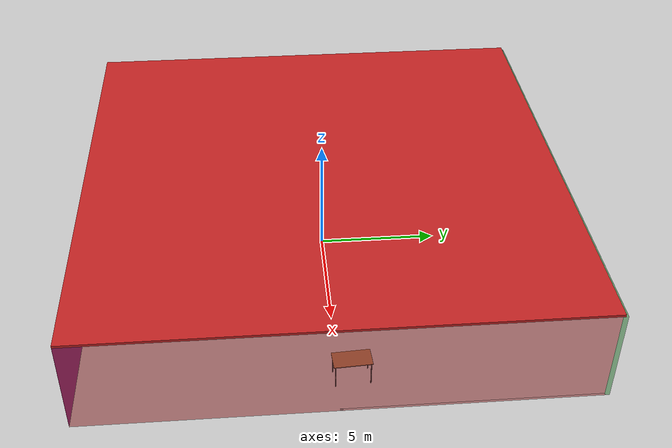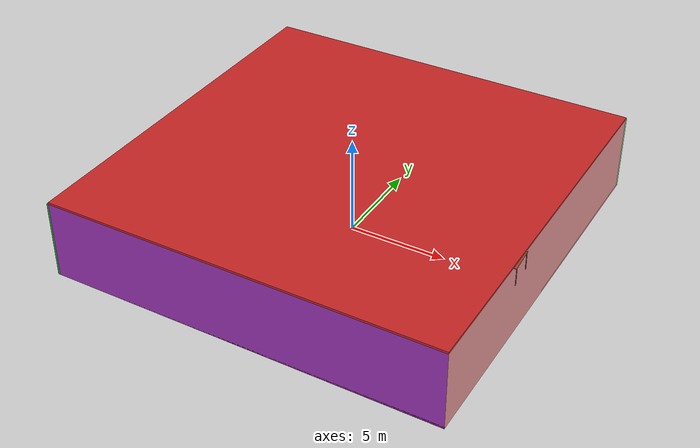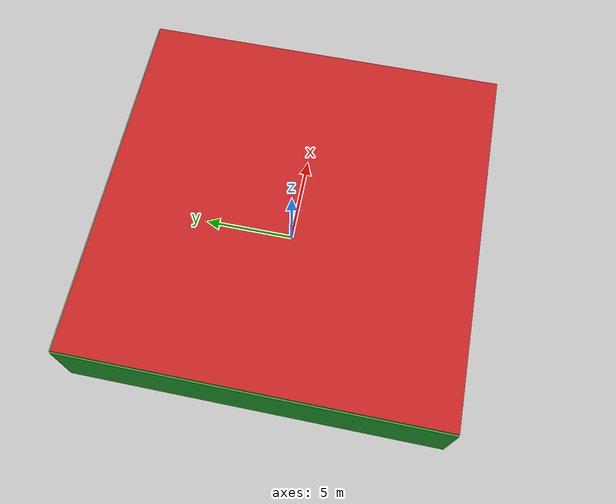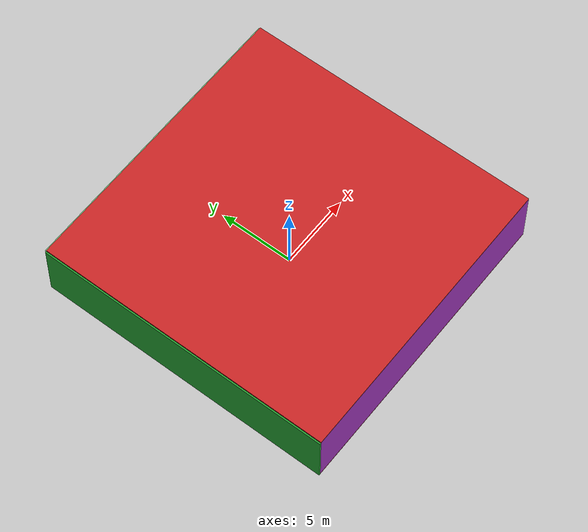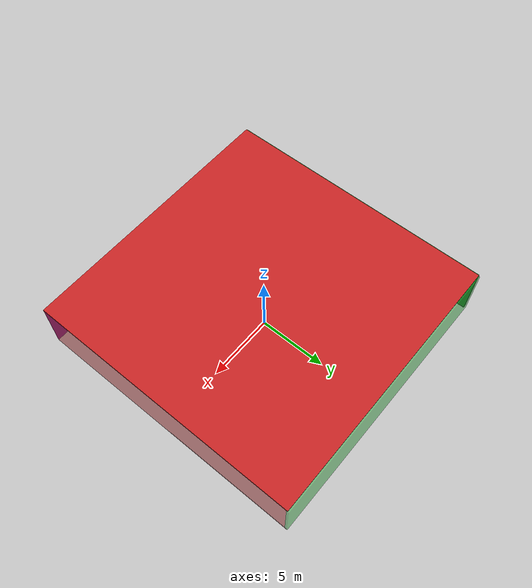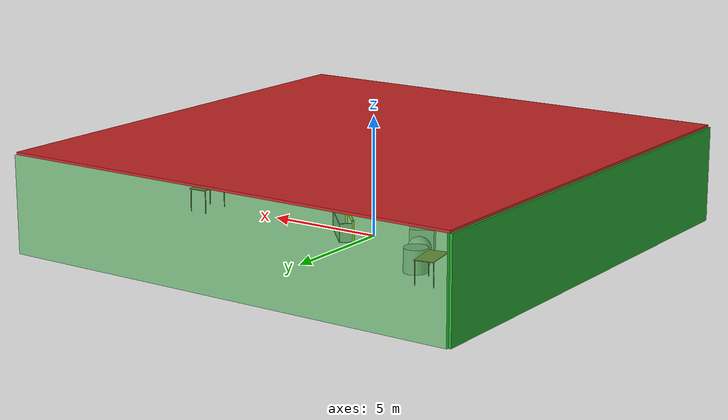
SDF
<sdf version="1.4">
 <world name="default">
  <physics type="ode">
   <max_step_size>0.001</max_step_size>
   <real_time_factor>1</real_time_factor>
   <real_time_update_rate>1000</real_time_update_rate>
   <gravity>0 0 -9.8</gravity>
  </physics>
  <scene><ambient>0.4 0.4 0.4 1</ambient><background>0.7 0.7 0.7 1</background><shadows>1</shadows></scene>
  <model name="Surrounding">
   <static>1</static>
   <link name="Ceiling">
    <collision name="Ceiling_Collision"><geometry><box><size>20 20 0.1</size></box></geometry></collision>
    <visual name="Ceiling_Visual">
     <geometry><box><size>20 20 0.1</size></box></geometry>
     <material>
      <script><uri>file://media/materials/scripts/gazebo.material</uri><name>Gazebo/Red</name></script>
     </material>
    </visual>
    <pose>0 0 4.05 0 0 0</pose>
   </link>
   <link name="Wall_South">
    <collision name="Wall_South_Collision">
     <geometry><box><size>20 0 4</size></box></geometry>
     <pose>0 0 2 0 -0 0</pose>
    </collision>
    <visual name="Wall_South_Visual">
     <pose>0 0 2 0 -0 0</pose>
     <geometry><box><size>20 0 4</size></box></geometry>
     <material>
      <script><uri>file://media/materials/scripts/gazebo.material</uri><name>Gazebo/Purple</name></script>
     </material>
    </visual>
    <velocity_decay><linear>0</linear><angular>0</angular></velocity_decay>
    <pose>0 -10 0 0 -0 0</pose>
   </link>
   <link name="Wall_East">
    <collision name="Wall_21_Collision">
     <geometry><box><size>20 0 4</size></box></geometry>
     <pose>0 0 2 0 -0 0</pose>
    </collision>
    <visual name="Wall_21_Visual">
     <pose>0 0 2 0 -0 0</pose>
     <geometry><box><size>20 0 4</size></box></geometry>
     <material>
      <script><uri>file://media/materials/scripts/gazebo.material</uri><name>Gazebo/RedTransparent</name></script>
     </material>
    </visual>
    <velocity_decay><linear>0</linear><angular>0</angular></velocity_decay>
    <pose>10 0 0 0 -0 1.5708</pose>
   </link>
   <link name="Wall_North">
    <collision name="Wall_22_Collision">
     <geometry><box><size>20 0.2 4</size></box></geometry>
     <pose>0 0 2 0 -0 0</pose>
    </collision>
    <visual name="Wall_22_Visual">
     <pose>0 0 2 0 -0 0</pose>
     <geometry><box><size>20 0.2 4</size></box></geometry>
     <material>
      <script><uri>file://media/materials/scripts/gazebo.material</uri><name>Gazebo/GreenTransparent</name></script>
     </material>
    </visual>
    <velocity_decay><linear>0</linear><angular>0</angular></velocity_decay>
    <pose>0 10 0 0 -0 0</pose>
   </link>
   <link name="Wall_West">
    <collision name="Wall_23_Collision">
     <geometry><box><size>20 0.2 4</size></box></geometry>
     <pose>0 0 2 0 -0 0</pose>
    </collision>
    <visual name="Wall_23_Visual">
     <pose>0 0 2 0 -0 0</pose>
     <geometry><box><size>20 0.2 4</size></box></geometry>
     <material>
      <script><uri>file://media/materials/scripts/gazebo.material</uri><name>Gazebo/Green</name></script>
     </material>
    </visual>
    <velocity_decay><linear>0</linear><angular>0</angular></velocity_decay>
    <pose>-10 0 0 0 0 -1.5708</pose>
   </link>
   <link name="Ground_link">
    <collision name="collision">
     <pose>0 0 .05 0 -0 0</pose>
     <geometry><box><size>20 20 0.1</size></box></geometry>
    </collision>
    <visual name="visual">
     <pose>0 0 .05 0 -0 0</pose>
     <geometry><box><size>20 20 0.1</size></box></geometry>
     <material>
      <script><uri>file://media/materials/scripts/gazebo.material</uri><name>Gazebo/RedTransparent</name></script>
     </material>
    </visual>
   </link>
   <static>1</static>
  </model>
  <spherical_coordinates>
   <surface_model>EARTH_WGS84</surface_model>
   <latitude_deg>0</latitude_deg>
   <longitude_deg>0</longitude_deg>
   <elevation>0</elevation>
   <heading_deg>0</heading_deg>
  </spherical_coordinates>
  <light name="lightball_0" type="diffuse">
   <diffuse>0.8 0.8 0.8 1</diffuse>
   <specular>0.2 0.2 0.2 1</specular>
   <attenuation>
    <range>100</range>
    <constant>0.7</constant>
    <linear>0.01</linear>
    <quadratic>0.001</quadratic>
   </attenuation>
   <direction>-0.5 0.1 -0.9</direction>
   <pose>9.14415116571 5.8838387801 2.96677459745 0 0 0</pose>
  </light>
  <light name="lightball_1" type="diffuse">
   <diffuse>0.8 0.8 0.8 1</diffuse>
   <specular>0.2 0.2 0.2 1</specular>
   <attenuation>
    <range>100</range>
    <constant>0.7</constant>
    <linear>0.01</linear>
    <quadratic>0.001</quadratic>
   </attenuation>
   <direction>-0.5 0.1 -0.9</direction>
   <pose>-2.62950357661 2.35650826886 3.05687646043 0 0 0</pose>
  </light>
  <light name="lightball_2" type="diffuse">
   <diffuse>0.8 0.8 0.8 1</diffuse>
   <specular>0.2 0.2 0.2 1</specular>
   <attenuation>
    <range>100</range>
    <constant>0.7</constant>
    <linear>0.01</linear>
    <quadratic>0.001</quadratic>
   </attenuation>
   <direction>-0.5 0.1 -0.9</direction>
   <pose>-1.03232721252 8.37123812712 2.42392224368 0 0 0</pose>
  </light>
  <light name="lightball_3" type="diffuse">
   <diffuse>0.8 0.8 0.8 1</diffuse>
   <specular>0.2 0.2 0.2 1</specular>
   <attenuation>
    <range>100</range>
    <constant>0.7</constant>
    <linear>0.01</linear>
    <quadratic>0.001</quadratic>
   </attenuation>
   <direction>-0.5 0.1 -0.9</direction>
   <pose>-6.22325384008 -5.9765713693 3.30729608823 0 0 0</pose>
  </light>
  <light name="lightball_4" type="diffuse">
   <diffuse>0.8 0.8 0.8 1</diffuse>
   <specular>0.2 0.2 0.2 1</specular>
   <attenuation>
    <range>100</range>
    <constant>0.7</constant>
    <linear>0.01</linear>
    <quadratic>0.001</quadratic>
   </attenuation>
   <direction>-0.5 0.1 -0.9</direction>
   <pose>9.70158492164 9.33809376908 2.14403301088 0 0 0</pose>
  </light>
  <light name="lightball_5" type="diffuse">
   <diffuse>0.8 0.8 0.8 1</diffuse>
   <specular>0.2 0.2 0.2 1</specular>
   <attenuation>
    <range>100</range>
    <constant>0.7</constant>
    <linear>0.01</linear>
    <quadratic>0.001</quadratic>
   </attenuation>
   <direction>-0.5 0.1 -0.9</direction>
   <pose>-8.74811157625 -9.48076918862 2.57927292582 0 0 0</pose>
  </light>
  <include>
   <uri>model://robocup_3Dsim_goal</uri>
   <pose>-3.48556157914 -5.29686082144 0 0 0 0.52875337611</pose>
  </include>
  <include><uri>model://table</uri><pose>-5.39223331242 3.99381756012 0 0 0 1.75368544878</pose></include>
  <include>
   <uri>model://textured_shapes</uri>
   <pose>-2.56530892048 0.52355270136 0 0 0 0.491126123063</pose>
  </include>
  <include>
   <uri>model://robocup_3Dsim_goal</uri>
   <pose>0.872979174954 0.461281683233 0 0 0 0.749584363873</pose>
  </include>
  <include><uri>model://table</uri><pose>8.3567958293 0.502712156494 0 0 0 1.63030998444</pose></include>
 </world>
</sdf>

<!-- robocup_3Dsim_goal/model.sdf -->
<sdf version="1.5">
  <model name="robocup_3d_goal">
    <static>true</static>
    <link name="left_post">
      <pose>0 1.05 0.45 0 0 0</pose>
      <collision name="collision">
        <geometry>
          <cylinder>
            <radius>0.05</radius>
            <length>0.9</length>
          </cylinder>
        </geometry>
      </collision>
      <visual name="visual">
        <geometry>
          <cylinder>
            <radius>0.05</radius>
            <length>0.9</length>
          </cylinder>
        </geometry>
        <material>
          <script>
            <uri>file://media/materials/scripts/gazebo.material</uri>
            <name>Gazebo/ZincYellow</name>
          </script>
        </material>
      </visual>
    </link>
    <link name="left_support_horiz_lower">
      <pose>0.30 1.05 0.01 0 0 0</pose>
      <collision name="collision">
        <geometry>
          <box>
            <size>0.50 0.02 0.02</size>
          </box>
        </geometry>
      </collision>
      <visual name="visual">
        <geometry>
          <box>
            <size>0.50 0.02 0.02</size>
          </box>
        </geometry>
        <material>
          <script>
            <uri>file://media/materials/scripts/gazebo.material</uri>
            <name>Gazebo/White</name>
          </script>
        </material>
      </visual>
    </link>
    <link name="left_support_horiz_upper">
      <pose>0.30 1.05 0.79 0 0 0</pose>
      <collision name="collision">
        <geometry>
          <box>
            <size>0.50 0.02 0.02</size>
          </box>
        </geometry>
      </collision>
      <visual name="visual">
        <geometry>
          <box>
            <size>0.50 0.02 0.02</size>
          </box>
        </geometry>
        <material>
          <script>
            <uri>file://media/materials/scripts/gazebo.material</uri>
            <name>Gazebo/White</name>
          </script>
        </material>
      </visual>
    </link>
    <link name="left_support_vertical">
      <pose>0.56 1.05 0.4 0 1.5708 0</pose>
      <collision name="collision">
        <geometry>
          <box>
            <size>0.80 0.02 0.02</size>
          </box>
        </geometry>
      </collision>
      <visual name="visual">
        <geometry>
          <box>
            <size>0.80 0.02 0.02</size>
          </box>
        </geometry>
        <material>
          <script>
            <uri>file://media/materials/scripts/gazebo.material</uri>
            <name>Gazebo/White</name>
          </script>
        </material>
      </visual>
    </link>
    <link name="right_support_horiz_lower">
      <pose>0.30 -1.05 0.01 0 0 0</pose>
      <collision name="collision">
        <geometry>
          <box>
            <size>0.50 0.02 0.02</size>
          </box>
        </geometry>
      </collision>
      <visual name="visual">
        <geometry>
          <box>
            <size>0.50 0.02 0.02</size>
          </box>
        </geometry>
        <material>
          <script>
            <uri>file://media/materials/scripts/gazebo.material</uri>
            <name>Gazebo/White</name>
          </script>
        </material>
      </visual>
    </link>
    <link name="right_support_horiz_upper">
      <pose>0.30 -1.05 0.79 0 0 0</pose>
      <collision name="collision">
        <geometry>
          <box>
            <size>0.50 0.02 0.02</size>
          </box>
        </geometry>
      </collision>
      <visual name="visual">
        <geometry>
          <box>
            <size>0.50 0.02 0.02</size>
          </box>
        </geometry>
        <material>
          <script>
            <uri>file://media/materials/scripts/gazebo.material</uri>
            <name>Gazebo/White</name>
          </script>
        </material>
      </visual>
    </link>
    <link name="right_support_vertical">
      <pose>0.56 -1.05 0.4 0 1.5708 0</pose>
      <collision name="collision">
        <geometry>
          <box>
            <size>0.80 0.02 0.02</size>
          </box>
        </geometry>
      </collision>
      <visual name="visual">
        <geometry>
          <box>
            <size>0.80 0.02 0.02</size>
          </box>
        </geometry>
        <material>
          <script>
            <uri>file://media/materials/scripts/gazebo.material</uri>
            <name>Gazebo/White</name>
          </script>
        </material>
      </visual>
    </link>
    <link name="center_support_horiz_lower">
      <pose>0.56 0 0.01 0 1.5708 0</pose>
      <collision name="collision">
        <geometry>
          <box>
            <size>0.02 2.08 0.02</size>
          </box>
        </geometry>
      </collision>
      <visual name="visual">
        <geometry>
          <box>
            <size>0.02 2.08 0.02</size>
          </box>
        </geometry>
        <material>
          <script>
            <uri>file://media/materials/scripts/gazebo.material</uri>
            <name>Gazebo/White</name>
          </script>
        </material>
      </visual>
    </link>
    <link name="center_support_horiz_upper">
      <pose>0.56 0 0.79 0 1.5708 0</pose>
      <collision name="collision">
        <geometry>
          <box>
            <size>0.02 2.08 0.02</size>
          </box>
        </geometry>
      </collision>
      <visual name="visual">
        <geometry>
          <box>
            <size>0.02 2.08 0.02</size>
          </box>
        </geometry>
        <material>
          <script>
            <uri>file://media/materials/scripts/gazebo.material</uri>
            <name>Gazebo/White</name>
          </script>
        </material>
      </visual>
    </link>
    <link name="right_post">
      <pose>0 -1.05 0.45 0 0 0</pose>
      <collision name="collision">
        <geometry>
          <cylinder>
            <radius>0.05</radius>
            <length>0.9</length>
          </cylinder>
        </geometry>
      </collision>
      <visual name="visual">
        <geometry>
          <cylinder>
            <radius>0.05</radius>
            <length>0.9</length>
          </cylinder>
        </geometry>
        <material>
          <script>
            <uri>file://media/materials/scripts/gazebo.material</uri>
            <name>Gazebo/ZincYellow</name>
          </script>
        </material>
      </visual>
    </link>
    <link name="crossbar">
      <pose>0 0 0.85 1.57 1.57 0</pose>
      <collision name="collision">
        <geometry>
          <cylinder>
            <radius>0.05</radius>
            <length>2.0</length>
          </cylinder>
        </geometry>
      </collision>
      <visual name="visual">
        <geometry>
          <cylinder>
            <radius>0.05</radius>
            <length>2.0</length>
          </cylinder>
        </geometry>
        <material>
          <script>
            <uri>file://media/materials/scripts/gazebo.material</uri>
            <name>Gazebo/ZincYellow</name>
          </script>
        </material>
      </visual>
    </link>
    <link name="center_net">
      <pose>0.56 0 0.40 0 0 0</pose>
      <collision name="collision">
        <geometry>
          <box>
            <size>0.01 2.1 0.80</size>
          </box>
        </geometry>
      </collision>
      <visual name="visual">
        <geometry>
          <box>
            <size>0.01 2.1 0.80</size>
          </box>
        </geometry>
        <material>
          <script>
            <uri>model://../model_source/models/robocup09_spl_field/materials/scripts/</uri>
            <uri>model://../model_source/models/robocup09_spl_field/materials/textures/</uri>
            <name>RoboCup/Net</name>
          </script>
        </material>
      </visual>
    </link>
    <link name="left_net">
      <pose>0.30 1.05 0.40 0 0 0</pose>
      <collision name="collision">
        <geometry>
          <box>
            <size>0.50 0.01 0.76</size>
          </box>
        </geometry>
      </collision>
      <visual name="visual">
        <geometry>
          <box>
            <size>0.50 0.01 0.76</size>
          </box>
        </geometry>
        <material>
          <script>
            <uri>model://../model_source/models/robocup09_spl_field/materials/scripts/</uri>
            <uri>model://../model_source/models/robocup09_spl_field/materials/textures/</uri>
            <name>RoboCup/Net</name>
          </script>
        </material>
      </visual>
    </link>
    <link name="right_net">
      <pose>0.30 -1.05 0.40 0 0 0</pose>
      <collision name="collision">
        <geometry>
          <box>
            <size>0.50 0.01 0.76</size>
          </box>
        </geometry>
      </collision>
      <visual name="visual">
        <geometry>
          <box>
            <size>0.50 0.01 0.76</size>
          </box>
        </geometry>
        <material>
          <script>
            <uri>model://../model_source/models/robocup09_spl_field/materials/scripts/</uri>
            <uri>model://../model_source/models/robocup09_spl_field/materials/textures/</uri>
            <name>RoboCup/Net</name>
          </script>
        </material>
      </visual>
    </link>
  </model>
</sdf>

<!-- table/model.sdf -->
<sdf version="1.5">
  <model name="table">
    <static>true</static>
    <link name="link">
      <collision name="surface">
        <pose>0 0 1.0 0 0 0</pose>
        <geometry>
          <box>
            <size>1.5 0.8 0.03</size>
          </box>
        </geometry>
        <surface>
          <friction>
            <ode>
              <mu>0.6</mu>
              <mu2>0.6</mu2>
            </ode>
          </friction>
        </surface>
      </collision>
      <visual name="visual1">
        <pose>0 0 1.0 0 0 0</pose>
        <geometry>
          <box>
            <size>1.5 0.8 0.03</size>
          </box>
        </geometry>
        <material>
          <script>
            <uri>model://media/materials/scripts/gazebo.material</uri>
            <name>Gazebo/Wood</name>
          </script>
        </material>
      </visual>
      <collision name="front_left_leg">
        <pose>0.68 0.38 0.5 0 0 0</pose>
        <geometry>
          <cylinder>
            <radius>0.02</radius>
            <length>1.0</length>
          </cylinder>
        </geometry>
      </collision>
      <visual name="front_left_leg">
        <pose>0.68 0.38 0.5 0 0 0</pose>
        <geometry>
          <cylinder>
            <radius>0.02</radius>
            <length>1.0</length>
          </cylinder>
        </geometry>
        <material>
          <script>
            <uri>model://media/materials/scripts/gazebo.material</uri>
            <name>Gazebo/Grey</name>
          </script>
        </material>
      </visual>
      <collision name="front_right_leg">
        <pose>0.68 -0.38 0.5 0 0 0</pose>
        <geometry>
          <cylinder>
            <radius>0.02</radius>
            <length>1.0</length>
          </cylinder>
        </geometry>
      </collision>
      <visual name="front_right_leg">
        <pose>0.68 -0.38 0.5 0 0 0</pose>
        <geometry>
          <cylinder>
            <radius>0.02</radius>
            <length>1.0</length>
          </cylinder>
        </geometry>
        <material>
          <script>
            <uri>model://media/materials/scripts/gazebo.material</uri>
            <name>Gazebo/Grey</name>
          </script>
        </material>
      </visual>
      <collision name="back_right_leg">
        <pose>-0.68 -0.38 0.5 0 0 0</pose>
        <geometry>
          <cylinder>
            <radius>0.02</radius>
            <length>1.0</length>
          </cylinder>
        </geometry>
      </collision>
      <visual name="back_right_leg">
        <pose>-0.68 -0.38 0.5 0 0 0</pose>
        <geometry>
          <cylinder>
            <radius>0.02</radius>
            <length>1.0</length>
          </cylinder>
        </geometry>
        <material>
          <script>
            <uri>model://media/materials/scripts/gazebo.material</uri>
            <name>Gazebo/Grey</name>
          </script>
        </material>
      </visual>
      <collision name="back_left_leg">
        <pose>-0.68 0.38 0.5 0 0 0</pose>
        <geometry>
          <cylinder>
            <radius>0.02</radius>
            <length>1.0</length>
          </cylinder>
        </geometry>
      </collision>
      <visual name="back_left_leg">
        <pose>-0.68 0.38 0.5 0 0 0</pose>
        <geometry>
          <cylinder>
            <radius>0.02</radius>
            <length>1.0</length>
          </cylinder>
        </geometry>
        <material>
          <script>
            <uri>model://media/materials/scripts/gazebo.material</uri>
            <name>Gazebo/Grey</name>
          </script>
        </material>
      </visual>
    </link>
  </model>
</sdf>

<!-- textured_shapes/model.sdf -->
<sdf version="1.6">
  <model name="textured_shapes">
    <pose>0 0 0.5 0 0 0</pose>
    <link name="box">
      <pose>0 -1.5 0 0 0 0</pose>
      <collision name="collision">
        <geometry>
          <box>
            <size>1 1 1</size>
          </box>
        </geometry>
      </collision>
      <visual name="visual">
        <geometry>
          <box>
            <size>1 1 1</size>
          </box>
        </geometry>
        <material>
          <script>
            <uri>model://../model_source/models/textured_shapes/materials/scripts</uri>
            <uri>model://../model_source/models/textured_shapes/materials/textures</uri>
            <name>TexturedShape/Squares</name>
          </script>
        </material>
      </visual>
    </link>
    <link name="sphere">
      <collision name="collision">
        <geometry>
          <sphere>
            <radius>0.5</radius>
          </sphere>
        </geometry>
      </collision>
      <visual name="visual">
        <geometry>
          <sphere>
            <radius>0.5</radius>
          </sphere>
        </geometry>
        <material>
          <script>
            <uri>model://../model_source/models/textured_shapes/materials/scripts</uri>
            <uri>model://../model_source/models/textured_shapes/materials/textures</uri>
            <name>TexturedShape/Squares</name>
          </script>
        </material>
      </visual>
    </link>
    <link name="cylinder">
      <pose>0 1.5 0 0 0 0</pose>
      <collision name="collision">
        <geometry>
          <cylinder>
            <radius>0.5</radius>
            <length>1</length>
          </cylinder>
        </geometry>
      </collision>
      <visual name="visual">
        <geometry>
          <cylinder>
            <radius>0.5</radius>
            <length>1</length>
          </cylinder>
        </geometry>
        <material>
          <script>
            <uri>model://../model_source/models/textured_shapes/materials/scripts</uri>
            <uri>model://../model_source/models/textured_shapes/materials/textures</uri>
            <name>TexturedShape/Squares</name>
          </script>
        </material>
      </visual>
    </link>
  </model>
</sdf>
